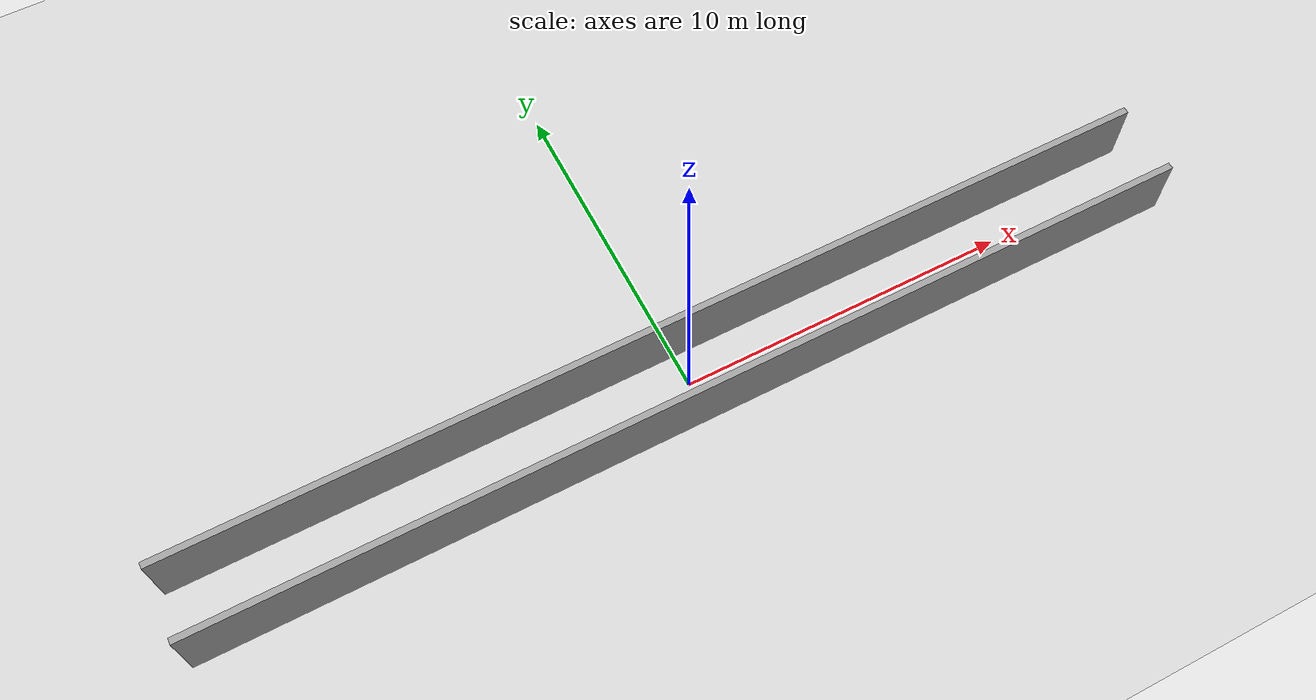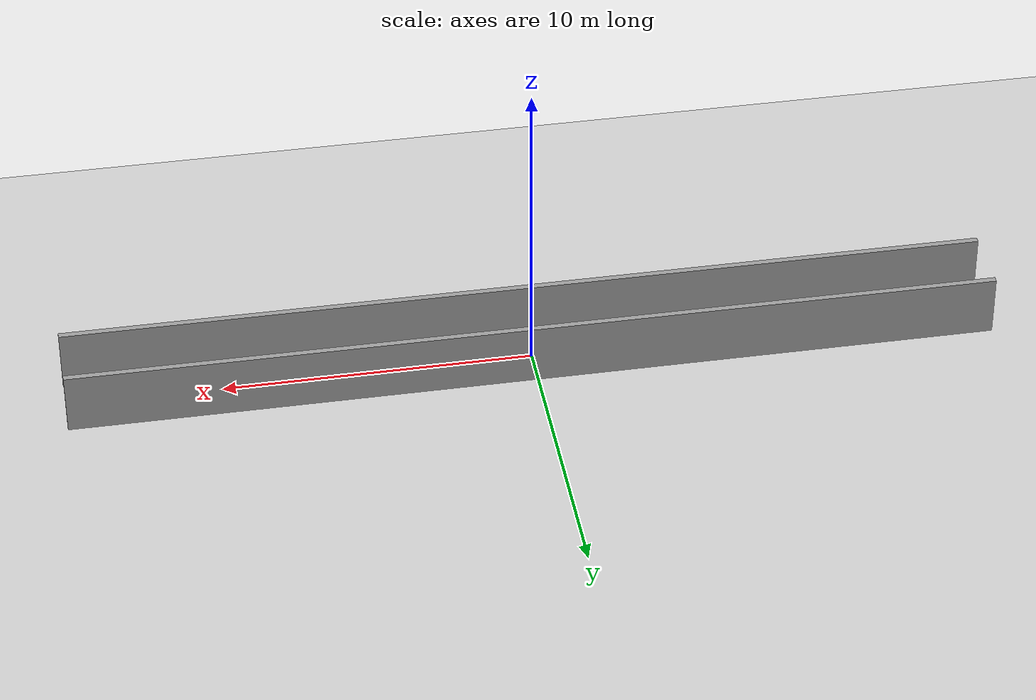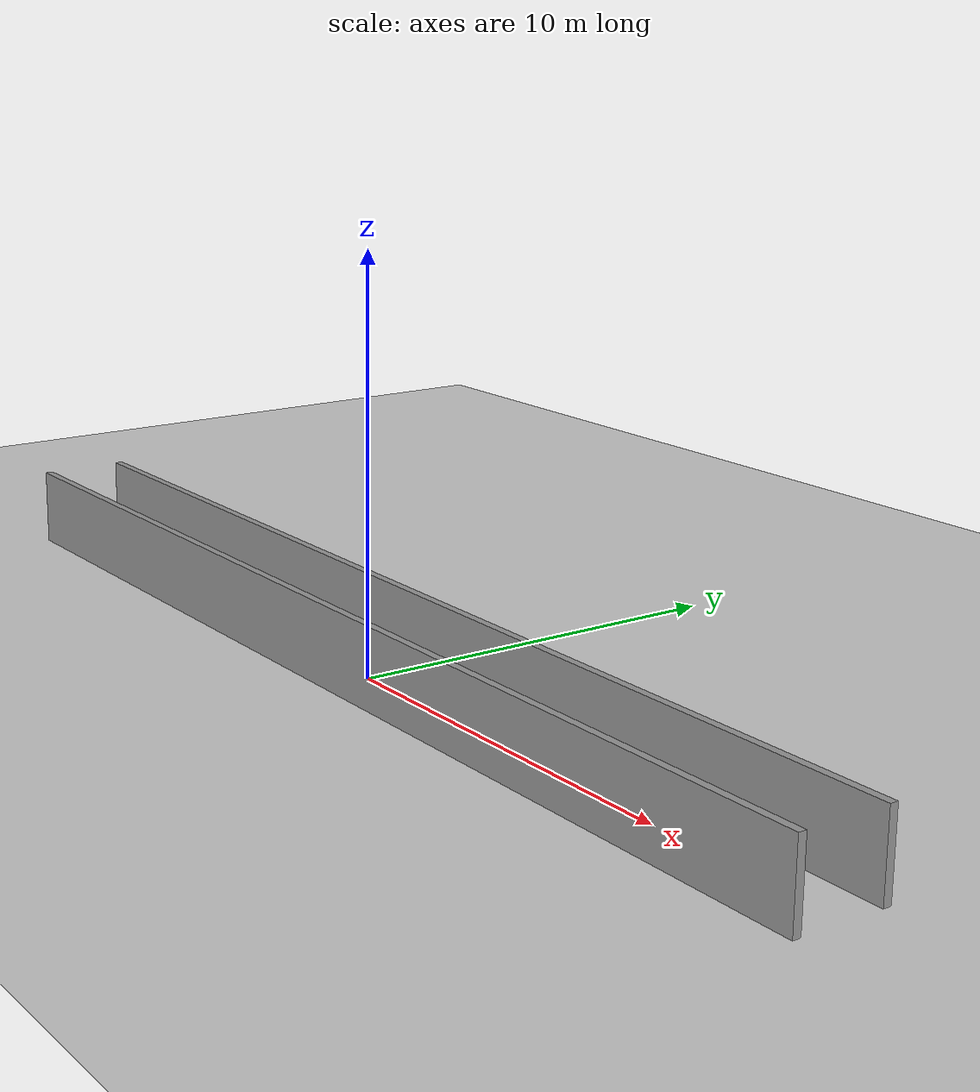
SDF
<?xml version="1.0" ?>
<!-- 走廊 30m x 2m 直墙，两端开口（退化场景：直行段） -->
<sdf version="1.6">
  <world name="corridor">
    <include>
      <uri>model://sun</uri>
    </include>
    <include>
      <uri>model://ground_plane</uri>
    </include>

    <physics type="ode">
      <max_step_size>0.001</max_step_size>
      <real_time_factor>1</real_time_factor>
      <real_time_update_rate>1000</real_time_update_rate>
      <ode>
        <solver>
          <type>quick</type>
          <iters>100</iters>
          <sor>1.3</sor>
        </solver>
        <constraints>
          <cfm>0.0</cfm>
          <erp>0.2</erp>
          <contact_max_correcting_vel>0.5</contact_max_correcting_vel>
          <contact_surface_layer>0.001</contact_surface_layer>
        </constraints>
      </ode>
    </physics>

    <model name="wall_left">
      <static>true</static>
      <link name="link">
        <collision name="collision">
          <geometry><box><size>30 0.2 2</size></box></geometry>
        </collision>
        <visual name="visual">
          <geometry><box><size>30 0.2 2</size></box></geometry>
          <material><ambient>0.6 0.6 0.6 1</ambient></material>
        </visual>
      </link>
      <pose>0 1.1 1 0 0 0</pose>
    </model>

    <model name="wall_right">
      <static>true</static>
      <link name="link">
        <collision name="collision">
          <geometry><box><size>30 0.2 2</size></box></geometry>
        </collision>
        <visual name="visual">
          <geometry><box><size>30 0.2 2</size></box></geometry>
          <material><ambient>0.6 0.6 0.6 1</ambient></material>
        </visual>
      </link>
      <pose>0 -1.1 1 0 0 0</pose>
    </model>
      <plugin name="gazebo_ros_state" filename="libgazebo_ros_state.so">
      <ros>
        <remapping>~/link_states:=/gazebo/link_states</remapping>
        <remapping>~/model_states:=/gazebo/model_states</remapping>
      </ros>
    </plugin>
  </world>
</sdf>
